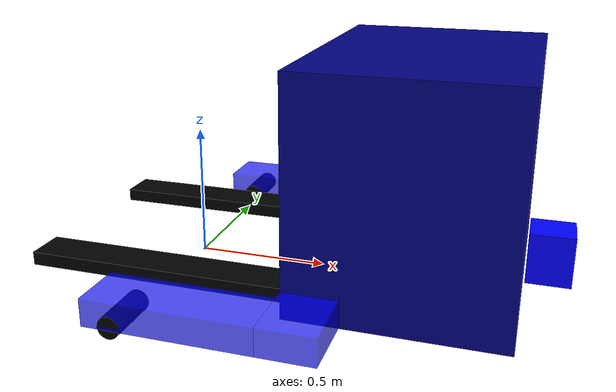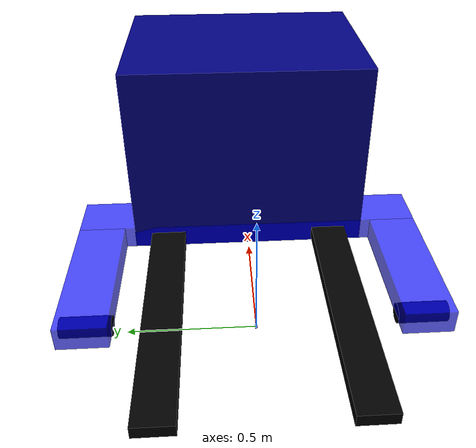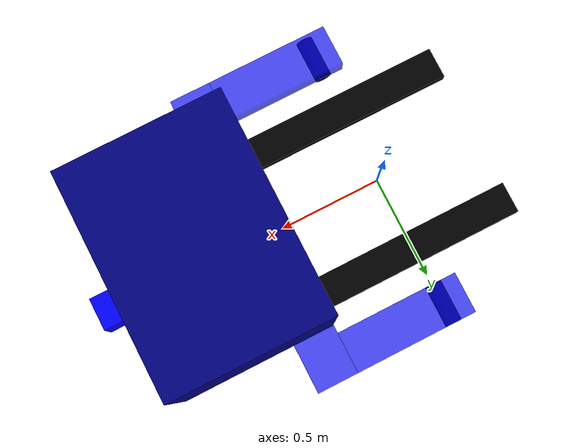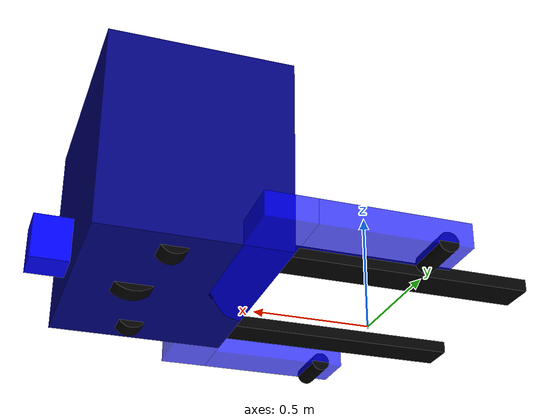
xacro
<?xml version="1.0"?>

<robot
	xmlns:xacro="http://www.ros.org/wiki/xacro"
 	xmlns:sensor="http://playerstage.sourceforge.net/gazebo/xmlschema/#sensor"
    	xmlns:controller="http://playerstage.sourceforge.net/gazebo/xmlschema/#controller"
    	xmlns:interface="http://playerstage.sourceforge.net/gazebo/xmlschema/#interface"
	name="robot_seldat">

	<xacro:property name="length_front_caster" value="0.3" />
	<xacro:property name="radius_front_caster" value="0.05" />

	<xacro:property name="length_front_wheel" value="0.1" />
        <xacro:property name="radius_front_wheel" value="0.125" />

        <xacro:property name="length_mid_caster" value="0.2" />
        <xacro:property name="radius_mid_caster" value="0.03" />

	<xacro:property name="length_caster_wheel" value="0.1" />
        <xacro:property name="radius_caster_wheel" value="0.065" />

	<xacro:property name="length_lift_wheel" value="0.2" />
        <xacro:property name="radius_lift_wheel" value="0.04" />

	<xacro:macro name="default_inertial" params="mass">
               <inertial>
                       <mass value="${mass}" />
                       <inertia ixx="1.0" ixy="0.0" ixz="0.0"
                                iyy="1.0" iyz="0.0"
                                izz="1.0" />
               </inertial>
	</xacro:macro>
	<!--base footprint-->

	<!--base link-->
	<link name="base_link">
   		<visual>
			<geometry>
      				<box size="0.01 0.01 0.01"/>
     			</geometry>
			<origin rpy="0 0 0" xyz="0 0 0"/>
			<material name="blue">
				<color rgba="0 0 1 0.7"/>
			</material>
   		</visual>
		<collision>
			<geometry>
       				<box size="0.01 0.01 0.01"/>
			</geometry>
		</collision>
		<xacro:default_inertial mass="1"/>
 	</link>

	<!--main_body-->
	<link name ="main_body">
		<visual>
			<geometry>
                                <box size="0.75 1.02 0.83"/>
                        </geometry>
                        <origin rpy="0 0 0" xyz="0 0 0"/>
                        <material name="blue">
                                <color rgba="0 0 0.5 1"/>
                        </material>
                </visual>
                <collision>
                        <geometry>
                                <box size="0.75 1.02 0.83"/>
                        </geometry>
                </collision>
                <xacro:default_inertial mass="100"/>
        </link>

        <!--middle frame-->
        <link name ="middle_frame">
                <visual>
                        <geometry>
                                <box size="0.2 1.505 0.1"/>
                        </geometry>
                        <origin rpy="0 0 0" xyz="0 0 0"/>
                        <material name="blue">
                                <color rgba="0 0 1 0.7"/>
                        </material>
                </visual>
                <collision>
                        <geometry>
                                <box size="0.2 1.505 0.1"/>
                        </geometry>
                </collision>
                <xacro:default_inertial mass="20"/>
        </link>

        <!--left_frame-->
        <link name ="left_frame">
                <visual>
                        <geometry>
                                <box size="0.60 0.2 0.1"/>
                        </geometry>
                        <origin rpy="0 0 0" xyz="0 0 0"/>
                        <material name="blue">
                                <color rgba="0 0 1 0.7"/>
                        </material>
                </visual>
                <collision>
                        <geometry>
                                <box size="0.51 0.2 0.1"/>
                        </geometry>
                </collision>
                <xacro:default_inertial mass="20"/>
        </link>

        <!--right_frame-->
        <link name ="right_frame">
                <visual>
                        <geometry>
                                <box size="0.60 0.2 0.1"/>
                        </geometry>
                        <origin rpy="0 0 0" xyz="0 0 0"/>
                        <material name="blue">
                                <color rgba="0 0 1 0.7"/>
                        </material>
                </visual>
                <collision>
                        <geometry>
                                <box size="0.51 0.2 0.1"/>
                        </geometry>
                </collision>
                <xacro:default_inertial mass="20"/>
        </link>

	<!--left lift-->
        <link name="left_lift">
                <visual>
                        <geometry>
                                <box size="1.0 0.15 0.05"/>
                        </geometry>
                        <origin rpy="0 0 0" xyz="0 0 0"/>
                        <material name="red">
                                <color rgba="0 0 0 1"/>
                        </material>
                </visual>
                <collision>
                        <geometry>
                                <box size="1.0 0.15 0.05"/>
                        </geometry>
                </collision>
                <xacro:default_inertial mass="20"/>
        </link>
	<!--right lift-->
        <link name="right_lift">
                <visual>
                        <geometry>
                                <box size="1.0 0.15 0.05"/>
                        </geometry>
                        <origin rpy="0 0 0" xyz="0 0 0"/>
                        <material name="red">
                                <color rgba="0 0 0 1"/>
                        </material>
                </visual>
                <collision>
                        <geometry>
                                <box size="1.0 0.15 0.05"/>
                        </geometry>
                </collision>
                <xacro:default_inertial mass="20"/>
        </link>

        <link name="laser">
                <visual>
                        <geometry>
                                <box size="0.156 0.155 0.185"/>
                        </geometry>
                        <origin rpy="0 0 0" xyz="0 0 0"/>
                        <material name="blue_">
                                <color rgba="0 0 1 1"/>
                        </material>
                </visual>
                <collision>
                        <geometry>
                                <box size="0.156 0.155 0.185"/>
                        </geometry>
                </collision>
                <xacro:default_inertial mass="20"/>
        </link>

 	<link name="front_caster">
   		<visual>
     			<geometry>
       				<cylinder length="${length_front_caster}" radius="${radius_front_caster}"/>
			</geometry>
			<origin rpy="0 0 0" xyz="0 0 0"/>
   			<material name="green">
				<color rgba="0 1 0 1"/>
			</material>
		</visual>
		<collision>
			<geometry>
       				<cylinder length="${length_front_caster}" radius="${radius_front_caster}"/>
			</geometry>
		</collision>
		<xacro:default_inertial mass="10"/>
 	</link>

 	<link name="front_wheel">
   		<visual>
     			<geometry>
       				<cylinder length="${length_front_wheel}" radius="${radius_front_wheel}"/>
     			</geometry>
			<origin rpy="0 0 0" xyz="0 0 0"/>
   			<material name="black">
				<color rgba="0 0 0 1"/>
			</material>
		</visual>
		<collision>
			<geometry>
       				<cylinder length="${length_front_wheel}" radius="${radius_front_wheel}"/>
			</geometry>
		</collision>
		<xacro:default_inertial mass="10"/>
 	</link>

        <link name="left_caster">
                <visual>
                        <geometry>
                                <cylinder length="${length_mid_caster}" radius="${radius_mid_caster}"/>
                        </geometry>
                        <origin rpy="0 0 0" xyz="0 0 0"/>
                        <material name="green">
                                <color rgba="0 1 0 1"/>
                        </material>
                </visual>
                <collision>
                        <geometry>
                                <cylinder length="${length_mid_caster}" radius="${radius_mid_caster}"/>
                        </geometry>
                </collision>
                <xacro:default_inertial mass="10"/>
        </link>

        <link name="left_caster_wheel">
                <visual>
                        <geometry>
                                <cylinder length="${length_caster_wheel}" radius="${radius_caster_wheel}"/>
                        </geometry>
                        <origin rpy="0 0 0" xyz="0 0 0"/>
                        <material name="black">
                                <color rgba="0 0 0 1"/>
                        </material>
                </visual>
                <collision>
                        <geometry>
                                <cylinder length="${length_caster_wheel}" radius="${radius_caster_wheel}"/>
                        </geometry>
                </collision>
                <xacro:default_inertial mass="10"/>
        </link>

        <link name="right_caster">
                <visual>
                        <geometry>
                                <cylinder length="${length_mid_caster}" radius="${radius_mid_caster}"/>
                        </geometry>
                        <origin rpy="0 0 0" xyz="0 0 0"/>
                        <material name="green">
                                <color rgba="0 1 0 1"/>
                        </material>
                </visual>
                <collision>
                        <geometry>
                                <cylinder length="${length_mid_caster}" radius="${radius_mid_caster}"/>
                        </geometry>
                </collision>
                <xacro:default_inertial mass="10"/>
        </link>

        <link name="right_caster_wheel">
                <visual>
                        <geometry>
                                <cylinder length="${length_caster_wheel}" radius="${radius_caster_wheel}"/>
                        </geometry>
                        <origin rpy="0 0 0" xyz="0 0 0"/>
                        <material name="black">
                                <color rgba="0 0 0 1"/>
                        </material>
                </visual>
                <collision>
                        <geometry>
                                <cylinder length="${length_caster_wheel}" radius="${radius_caster_wheel}"/>
                        </geometry>
                </collision>
                <xacro:default_inertial mass="10"/>
        </link>

        <link name="left_lift_wheel">
                <visual>
                        <geometry>
                                <cylinder length="${length_lift_wheel}" radius="${radius_lift_wheel}"/>
                        </geometry>
                        <origin rpy="0 0 0" xyz="0 0 0"/>
                        <material name="black">
                                <color rgba="0 0 0 1"/>
                        </material>
                </visual>
                <collision>
                        <geometry>
                                <cylinder length="${length_lift_wheel}" radius="${radius_lift_wheel}"/>
                        </geometry>
                </collision>
                <xacro:default_inertial mass="10"/>
        </link>

        <link name="right_lift_wheel">
                <visual>
                        <geometry>
                                <cylinder length="${length_lift_wheel}" radius="${radius_lift_wheel}"/>
                        </geometry>
                        <origin rpy="0 0 0" xyz="0 0 0"/>
                        <material name="black">
                                <color rgba="0 0 0 1"/>
                        </material>
                </visual>
                <collision>
                        <geometry>
                                <cylinder length="${length_lift_wheel}" radius="${radius_lift_wheel}"/>
                        </geometry>
                </collision>
                <xacro:default_inertial mass="10"/>
        </link>

	<!-- add 0.4 -->
	<joint name="base_link_main_body" type="fixed">
                <origin xyz="0.875 0 0.445" rpy="0 0 0"/>
                <parent link="base_link" />
                <child link="main_body" />
        </joint>

    	<joint name="main_body_middle_frame" type="fixed">
                <origin xyz="-0.275 0 -0.365" rpy="0 0 0"/>
                <parent link="main_body"/>
                <child link="middle_frame"/>
	</joint>

    	<joint name="middle_frame_left_frame" type="fixed">
                <origin xyz="-0.4 0.6525 0" rpy="0 0 0"/>
                <parent link="middle_frame"/>
                <child link="left_frame"/>
	</joint>

    	<joint name="middle_frame_right_frame" type="fixed">
                <origin xyz="-0.4 -0.6525 0" rpy="0 0 0"/>
                <parent link="middle_frame"/>
                <child link="right_frame"/>
	</joint>

    	<joint name="base_link_laser_link" type="fixed">
                <origin xyz="1.335 0 0.165" rpy="0 0 0"/>
                <parent link="base_link"/>
                <child link="laser"/>
	</joint>

        <joint name="main_body_left_lift" type="fixed">
                <origin xyz="-0.875 0.36 -0.37" rpy="0 0 0"/>
                <parent link="main_body"/>
                <child link="left_lift"/>
        </joint>

        <joint name="main_body_right_lift" type="fixed">
                <origin xyz="-0.875 -0.36 -0.37" rpy="0 0 0"/>
                <parent link="main_body"/>
                <child link="right_lift"/>
        </joint>

 	<joint name="base_link_front_caster" type="continuous">
   		<parent link="base_link"/>
   		<child link="front_caster"/>
   		<origin rpy="0 0 0" xyz="1.0 0 0.275"/>
   		<axis xyz="0 0 1" />
 	</joint>

 	<joint name="front_caster_front_wheel" type="continuous">
   		<axis xyz="0 0 1" />
   	<parent link="front_caster"/>
   		<child link="front_wheel"/>
  		<origin rpy="-1.5707 0 0" xyz="0 0 -0.15"/>
	</joint>

        <joint name="base_link_left_caster" type="continuous">
                <parent link="base_link"/>
                <axis xyz="0 0 1" />
                <child link="left_caster"/>
                <origin rpy="0 0 0" xyz="0.929 0.372 0.165"/>
        </joint>

 	<joint name="left_caster_left_caster_wheel" type="continuous">
   		<parent link="left_caster"/>
   		<axis xyz="0 0 1" />
   		<child link="left_caster_wheel"/>
   		<origin rpy="-1.5707 0 0" xyz="0 0 -0.1"/>
 	</joint>

        <joint name="base_link_right_caster" type="continuous">
                <parent link="base_link"/>
                <axis xyz="0 0 1" />
                <child link="right_caster"/>
                <origin rpy="0 0 0" xyz="0.929 -0.372 0.165"/>
        </joint>

        <joint name="right_caster_right_caster_wheel" type="continuous">
                <parent link="right_caster"/>
                <axis xyz="0 0 1" />
                <child link="right_caster_wheel"/>
                <origin rpy="-1.5707 0 0" xyz="0 0 -0.1"/>
        </joint>

 	<joint name="left_frame_left_lift_wheel" type="continuous">
   		<parent link="left_frame"/>
   		<axis xyz="0 0 1" />
   		<child link="left_lift_wheel"/>
   		<origin rpy="-1.5707 0 0" xyz="-0.2 0 -0.04"/>
 	</joint>

        <joint name="right_frame_right_lift_wheel" type="continuous">
                <parent link="right_frame"/>
                <axis xyz="0 0 1" />
                <child link="right_lift_wheel"/>
                <origin rpy="-1.5707 0 0" xyz="-0.2 0 -0.04"/>
        </joint>
</robot>
